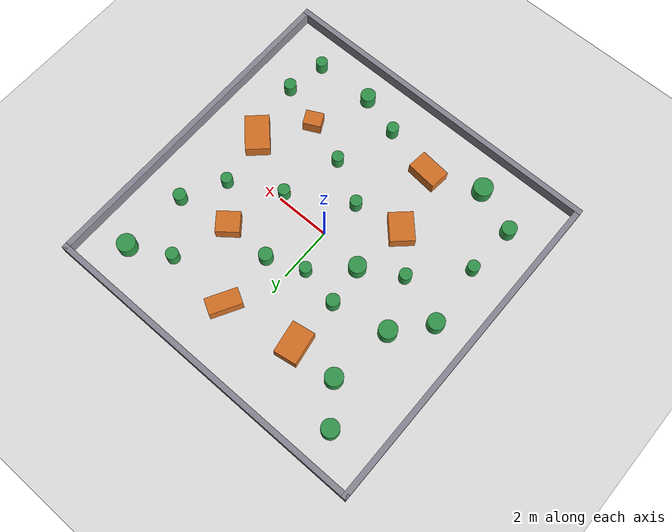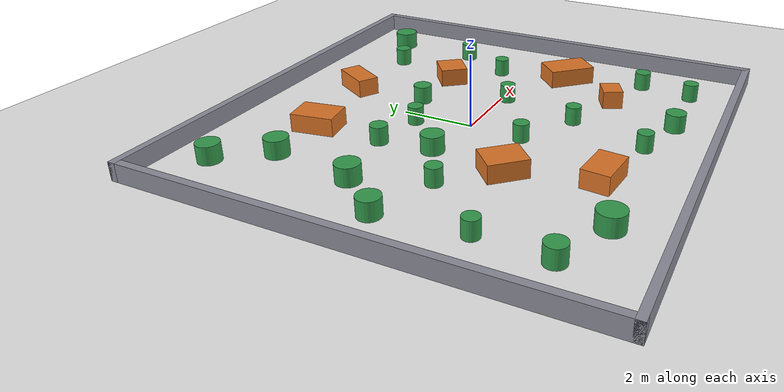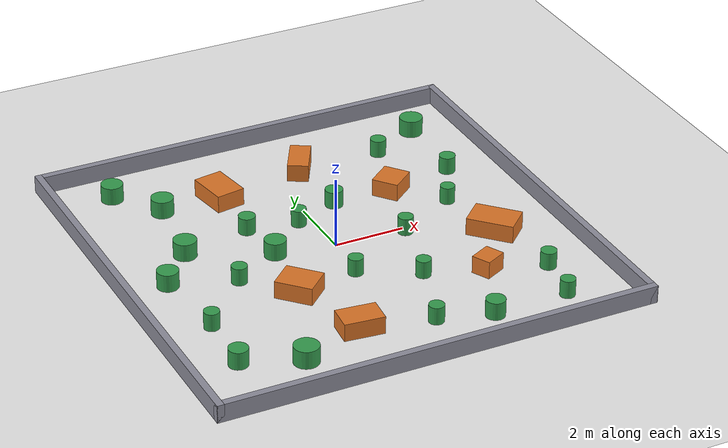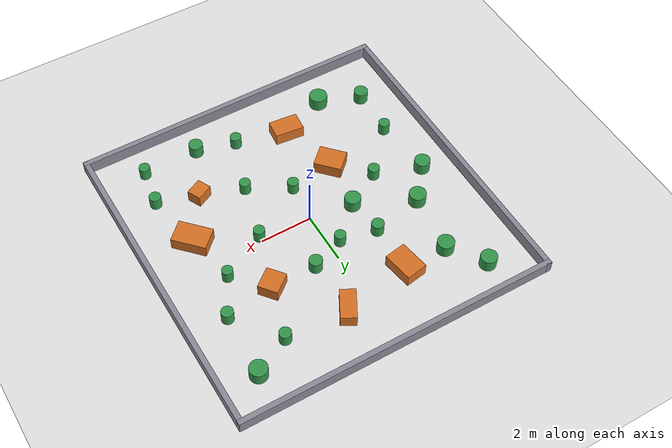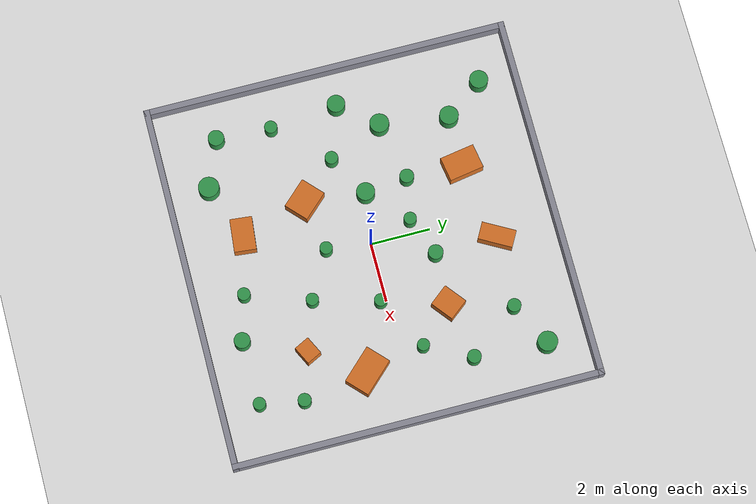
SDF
<?xml version="1.0" ?>
<!-- GENERATED by worlds/gen_worlds.py - do not edit by hand. -->
<sdf version="1.6">
  <world name="cluttered">
    <gravity>0 0 -9.8</gravity>
    <physics name="ode_500hz" type="ode">
      <max_step_size>0.002</max_step_size>
      <real_time_factor>1.0</real_time_factor>
      <real_time_update_rate>500</real_time_update_rate>
    </physics>

    <!-- ROS interface: exposes /get_entity_state and /set_entity_state (used by the episode runner) -->
    <plugin name="gazebo_ros_state" filename="libgazebo_ros_state.so">
      <ros><namespace>/</namespace></ros>
      <update_rate>10.0</update_rate>
    </plugin>

    <scene>
      <ambient>0.6 0.6 0.6 1</ambient>
      <background>0.85 0.9 0.95 1</background>
      <shadows>false</shadows>
    </scene>

    <light name="sun" type="directional">
      <cast_shadows>false</cast_shadows>
      <pose>0 0 10 0 0 0</pose>
      <diffuse>0.8 0.8 0.8 1</diffuse>
      <specular>0.2 0.2 0.2 1</specular>
      <direction>-0.3 0.2 -1.0</direction>
    </light>

    <model name="ground_plane">
      <static>true</static>
      <link name="link">
        <collision name="collision">
          <geometry><plane><normal>0 0 1</normal><size>40 40</size></plane></geometry>
          <surface><friction><ode><mu>100</mu><mu2>50</mu2></ode></friction></surface>
        </collision>
        <visual name="visual">
          <geometry><plane><normal>0 0 1</normal><size>40 40</size></plane></geometry>
          <material><ambient>0.9 0.9 0.9 1</ambient><diffuse>0.9 0.9 0.9 1</diffuse></material>
        </visual>
      </link>
    </model>

    <model name="wall_north">
      <static>true</static>
      <pose>0.0000 6.1000 0.2500 0 0 0.0000</pose>
      <link name="link">
        <collision name="collision"><geometry><box><size>12.4000 0.2000 0.5000</size></box></geometry></collision>
        <visual name="visual"><geometry><box><size>12.4000 0.2000 0.5000</size></box></geometry>
          <material><ambient>0.55 0.55 0.6 1</ambient><diffuse>0.55 0.55 0.6 1</diffuse></material></visual>
      </link>
    </model>
    <model name="wall_south">
      <static>true</static>
      <pose>0.0000 -6.1000 0.2500 0 0 0.0000</pose>
      <link name="link">
        <collision name="collision"><geometry><box><size>12.4000 0.2000 0.5000</size></box></geometry></collision>
        <visual name="visual"><geometry><box><size>12.4000 0.2000 0.5000</size></box></geometry>
          <material><ambient>0.55 0.55 0.6 1</ambient><diffuse>0.55 0.55 0.6 1</diffuse></material></visual>
      </link>
    </model>
    <model name="wall_east">
      <static>true</static>
      <pose>6.1000 0.0000 0.2500 0 0 0.0000</pose>
      <link name="link">
        <collision name="collision"><geometry><box><size>0.2000 12.4000 0.5000</size></box></geometry></collision>
        <visual name="visual"><geometry><box><size>0.2000 12.4000 0.5000</size></box></geometry>
          <material><ambient>0.55 0.55 0.6 1</ambient><diffuse>0.55 0.55 0.6 1</diffuse></material></visual>
      </link>
    </model>
    <model name="wall_west">
      <static>true</static>
      <pose>-6.1000 0.0000 0.2500 0 0 0.0000</pose>
      <link name="link">
        <collision name="collision"><geometry><box><size>0.2000 12.4000 0.5000</size></box></geometry></collision>
        <visual name="visual"><geometry><box><size>0.2000 12.4000 0.5000</size></box></geometry>
          <material><ambient>0.55 0.55 0.6 1</ambient><diffuse>0.55 0.55 0.6 1</diffuse></material></visual>
      </link>
    </model>
    <model name="cluttered_cyl_0">
      <static>true</static>
      <pose>-3.0680 -0.5521 0.2500 0 0 0</pose>
      <link name="link">
        <collision name="collision"><geometry><cylinder><radius>0.2195</radius><length>0.5000</length></cylinder></geometry></collision>
        <visual name="visual"><geometry><cylinder><radius>0.2195</radius><length>0.5000</length></cylinder></geometry>
          <material><ambient>0.2 0.6 0.3 1</ambient><diffuse>0.2 0.6 0.3 1</diffuse></material></visual>
      </link>
    </model>
    <model name="cluttered_cyl_1">
      <static>true</static>
      <pose>-4.6875 -4.0857 0.2500 0 0 0</pose>
      <link name="link">
        <collision name="collision"><geometry><cylinder><radius>0.2683</radius><length>0.5000</length></cylinder></geometry></collision>
        <visual name="visual"><geometry><cylinder><radius>0.2683</radius><length>0.5000</length></cylinder></geometry>
          <material><ambient>0.2 0.6 0.3 1</ambient><diffuse>0.2 0.6 0.3 1</diffuse></material></visual>
      </link>
    </model>
    <model name="cluttered_box_2">
      <static>true</static>
      <pose>-1.2777 -4.0091 0.2500 0 0 1.4716</pose>
      <link name="link">
        <collision name="collision"><geometry><box><size>0.7370 1.1177 0.5000</size></box></geometry></collision>
        <visual name="visual"><geometry><box><size>0.7370 1.1177 0.5000</size></box></geometry>
          <material><ambient>0.85 0.45 0.15 1</ambient><diffuse>0.85 0.45 0.15 1</diffuse></material></visual>
      </link>
    </model>
    <model name="cluttered_box_3">
      <static>true</static>
      <pose>4.1507 -1.2098 0.2500 0 0 0.7602</pose>
      <link name="link">
        <collision name="collision"><geometry><box><size>0.8713 1.3211 0.5000</size></box></geometry></collision>
        <visual name="visual"><geometry><box><size>0.8713 1.3211 0.5000</size></box></geometry>
          <material><ambient>0.85 0.45 0.15 1</ambient><diffuse>0.85 0.45 0.15 1</diffuse></material></visual>
      </link>
    </model>
    <model name="cluttered_box_4">
      <static>true</static>
      <pose>3.0170 -2.9074 0.2500 0 0 -1.1095</pose>
      <link name="link">
        <collision name="collision"><geometry><box><size>0.5456 0.6500 0.5000</size></box></geometry></collision>
        <visual name="visual"><geometry><box><size>0.5456 0.6500 0.5000</size></box></geometry>
          <material><ambient>0.85 0.45 0.15 1</ambient><diffuse>0.85 0.45 0.15 1</diffuse></material></visual>
      </link>
    </model>
    <model name="cluttered_cyl_5">
      <static>true</static>
      <pose>-4.5970 -2.2377 0.2500 0 0 0</pose>
      <link name="link">
        <collision name="collision"><geometry><cylinder><radius>0.2148</radius><length>0.5000</length></cylinder></geometry></collision>
        <visual name="visual"><geometry><cylinder><radius>0.2148</radius><length>0.5000</length></cylinder></geometry>
          <material><ambient>0.2 0.6 0.3 1</ambient><diffuse>0.2 0.6 0.3 1</diffuse></material></visual>
      </link>
    </model>
    <model name="cluttered_box_6">
      <static>true</static>
      <pose>-1.9112 -1.7639 0.2500 0 0 -0.8190</pose>
      <link name="link">
        <collision name="collision"><geometry><box><size>1.0565 0.8631 0.5000</size></box></geometry></collision>
        <visual name="visual"><geometry><box><size>1.0565 0.8631 0.5000</size></box></geometry>
          <material><ambient>0.85 0.45 0.15 1</ambient><diffuse>0.85 0.45 0.15 1</diffuse></material></visual>
      </link>
    </model>
    <model name="cluttered_box_7">
      <static>true</static>
      <pose>2.6299 1.9195 0.2500 0 0 -2.4685</pose>
      <link name="link">
        <collision name="collision"><geometry><box><size>0.8392 0.7618 0.5000</size></box></geometry></collision>
        <visual name="visual"><geometry><box><size>0.8392 0.7618 0.5000</size></box></geometry>
          <material><ambient>0.85 0.45 0.15 1</ambient><diffuse>0.85 0.45 0.15 1</diffuse></material></visual>
      </link>
    </model>
    <model name="cluttered_box_8">
      <static>true</static>
      <pose>0.8431 4.0516 0.2500 0 0 2.6310</pose>
      <link name="link">
        <collision name="collision"><geometry><box><size>0.5904 1.1637 0.5000</size></box></geometry></collision>
        <visual name="visual"><geometry><box><size>0.5904 1.1637 0.5000</size></box></geometry>
          <material><ambient>0.85 0.45 0.15 1</ambient><diffuse>0.85 0.45 0.15 1</diffuse></material></visual>
      </link>
    </model>
    <model name="cluttered_cyl_9">
      <static>true</static>
      <pose>-3.8184 1.2798 0.2500 0 0 0</pose>
      <link name="link">
        <collision name="collision"><geometry><cylinder><radius>0.3240</radius><length>0.5000</length></cylinder></geometry></collision>
        <visual name="visual"><geometry><cylinder><radius>0.3240</radius><length>0.5000</length></cylinder></geometry>
          <material><ambient>0.2 0.6 0.3 1</ambient><diffuse>0.2 0.6 0.3 1</diffuse></material></visual>
      </link>
    </model>
    <model name="cluttered_cyl_10">
      <static>true</static>
      <pose>2.1543 -4.8937 0.2500 0 0 0</pose>
      <link name="link">
        <collision name="collision"><geometry><cylinder><radius>0.2674</radius><length>0.5000</length></cylinder></geometry></collision>
        <visual name="visual"><geometry><cylinder><radius>0.2674</radius><length>0.5000</length></cylinder></geometry>
          <material><ambient>0.2 0.6 0.3 1</ambient><diffuse>0.2 0.6 0.3 1</diffuse></material></visual>
      </link>
    </model>
    <model name="cluttered_cyl_11">
      <static>true</static>
      <pose>-3.4970 3.5873 0.2500 0 0 0</pose>
      <link name="link">
        <collision name="collision"><geometry><cylinder><radius>0.3178</radius><length>0.5000</length></cylinder></geometry></collision>
        <visual name="visual"><geometry><cylinder><radius>0.3178</radius><length>0.5000</length></cylinder></geometry>
          <material><ambient>0.2 0.6 0.3 1</ambient><diffuse>0.2 0.6 0.3 1</diffuse></material></visual>
      </link>
    </model>
    <model name="cluttered_cyl_12">
      <static>true</static>
      <pose>1.9912 -0.1978 0.2500 0 0 0</pose>
      <link name="link">
        <collision name="collision"><geometry><cylinder><radius>0.2123</radius><length>0.5000</length></cylinder></geometry></collision>
        <visual name="visual"><geometry><cylinder><radius>0.2123</radius><length>0.5000</length></cylinder></geometry>
          <material><ambient>0.2 0.6 0.3 1</ambient><diffuse>0.2 0.6 0.3 1</diffuse></material></visual>
      </link>
    </model>
    <model name="cluttered_box_13">
      <static>true</static>
      <pose>-1.8114 3.5720 0.2500 0 0 0.1642</pose>
      <link name="link">
        <collision name="collision"><geometry><box><size>0.8313 1.1782 0.5000</size></box></geometry></collision>
        <visual name="visual"><geometry><box><size>0.8313 1.1782 0.5000</size></box></geometry>
          <material><ambient>0.85 0.45 0.15 1</ambient><diffuse>0.85 0.45 0.15 1</diffuse></material></visual>
      </link>
    </model>
    <model name="cluttered_cyl_14">
      <static>true</static>
      <pose>4.6863 4.6955 0.2500 0 0 0</pose>
      <link name="link">
        <collision name="collision"><geometry><cylinder><radius>0.3330</radius><length>0.5000</length></cylinder></geometry></collision>
        <visual name="visual"><geometry><cylinder><radius>0.3330</radius><length>0.5000</length></cylinder></geometry>
          <material><ambient>0.2 0.6 0.3 1</ambient><diffuse>0.2 0.6 0.3 1</diffuse></material></visual>
      </link>
    </model>
    <model name="cluttered_cyl_15">
      <static>true</static>
      <pose>-1.8336 1.6949 0.2500 0 0 0</pose>
      <link name="link">
        <collision name="collision"><geometry><cylinder><radius>0.2369</radius><length>0.5000</length></cylinder></geometry></collision>
        <visual name="visual"><geometry><cylinder><radius>0.2369</radius><length>0.5000</length></cylinder></geometry>
          <material><ambient>0.2 0.6 0.3 1</ambient><diffuse>0.2 0.6 0.3 1</diffuse></material></visual>
      </link>
    </model>
    <model name="cluttered_cyl_16">
      <static>true</static>
      <pose>-0.1449 -1.4874 0.2500 0 0 0</pose>
      <link name="link">
        <collision name="collision"><geometry><cylinder><radius>0.2122</radius><length>0.5000</length></cylinder></geometry></collision>
        <visual name="visual"><geometry><cylinder><radius>0.2122</radius><length>0.5000</length></cylinder></geometry>
          <material><ambient>0.2 0.6 0.3 1</ambient><diffuse>0.2 0.6 0.3 1</diffuse></material></visual>
      </link>
    </model>
    <model name="cluttered_cyl_17">
      <static>true</static>
      <pose>3.7763 0.7662 0.2500 0 0 0</pose>
      <link name="link">
        <collision name="collision"><geometry><cylinder><radius>0.2057</radius><length>0.5000</length></cylinder></geometry></collision>
        <visual name="visual"><geometry><cylinder><radius>0.2057</radius><length>0.5000</length></cylinder></geometry>
          <material><ambient>0.2 0.6 0.3 1</ambient><diffuse>0.2 0.6 0.3 1</diffuse></material></visual>
      </link>
    </model>
    <model name="cluttered_cyl_18">
      <static>true</static>
      <pose>-4.8313 0.0557 0.2500 0 0 0</pose>
      <link name="link">
        <collision name="collision"><geometry><cylinder><radius>0.2999</radius><length>0.5000</length></cylinder></geometry></collision>
        <visual name="visual"><geometry><cylinder><radius>0.2999</radius><length>0.5000</length></cylinder></geometry>
          <material><ambient>0.2 0.6 0.3 1</ambient><diffuse>0.2 0.6 0.3 1</diffuse></material></visual>
      </link>
    </model>
    <model name="cluttered_cyl_19">
      <static>true</static>
      <pose>0.6730 -4.4700 0.2500 0 0 0</pose>
      <link name="link">
        <collision name="collision"><geometry><cylinder><radius>0.2135</radius><length>0.5000</length></cylinder></geometry></collision>
        <visual name="visual"><geometry><cylinder><radius>0.2135</radius><length>0.5000</length></cylinder></geometry>
          <material><ambient>0.2 0.6 0.3 1</ambient><diffuse>0.2 0.6 0.3 1</diffuse></material></visual>
      </link>
    </model>
    <model name="cluttered_cyl_20">
      <static>true</static>
      <pose>-0.4142 1.4339 0.2500 0 0 0</pose>
      <link name="link">
        <collision name="collision"><geometry><cylinder><radius>0.2112</radius><length>0.5000</length></cylinder></geometry></collision>
        <visual name="visual"><geometry><cylinder><radius>0.2112</radius><length>0.5000</length></cylinder></geometry>
          <material><ambient>0.2 0.6 0.3 1</ambient><diffuse>0.2 0.6 0.3 1</diffuse></material></visual>
      </link>
    </model>
    <model name="cluttered_cyl_21">
      <static>true</static>
      <pose>-3.1145 -4.7183 0.2500 0 0 0</pose>
      <link name="link">
        <collision name="collision"><geometry><cylinder><radius>0.3481</radius><length>0.5000</length></cylinder></geometry></collision>
        <visual name="visual"><geometry><cylinder><radius>0.3481</radius><length>0.5000</length></cylinder></geometry>
          <material><ambient>0.2 0.6 0.3 1</ambient><diffuse>0.2 0.6 0.3 1</diffuse></material></visual>
      </link>
    </model>
    <model name="cluttered_cyl_22">
      <static>true</static>
      <pose>1.4069 -2.3510 0.2500 0 0 0</pose>
      <link name="link">
        <collision name="collision"><geometry><cylinder><radius>0.2093</radius><length>0.5000</length></cylinder></geometry></collision>
        <visual name="visual"><geometry><cylinder><radius>0.2093</radius><length>0.5000</length></cylinder></geometry>
          <material><ambient>0.2 0.6 0.3 1</ambient><diffuse>0.2 0.6 0.3 1</diffuse></material></visual>
      </link>
    </model>
    <model name="cluttered_cyl_23">
      <static>true</static>
      <pose>4.3074 -4.8529 0.2500 0 0 0</pose>
      <link name="link">
        <collision name="collision"><geometry><cylinder><radius>0.2086</radius><length>0.5000</length></cylinder></geometry></collision>
        <visual name="visual"><geometry><cylinder><radius>0.2086</radius><length>0.5000</length></cylinder></geometry>
          <material><ambient>0.2 0.6 0.3 1</ambient><diffuse>0.2 0.6 0.3 1</diffuse></material></visual>
      </link>
    </model>
    <model name="cluttered_cyl_24">
      <static>true</static>
      <pose>4.5664 2.2649 0.2500 0 0 0</pose>
      <link name="link">
        <collision name="collision"><geometry><cylinder><radius>0.2289</radius><length>0.5000</length></cylinder></geometry></collision>
        <visual name="visual"><geometry><cylinder><radius>0.2289</radius><length>0.5000</length></cylinder></geometry>
          <material><ambient>0.2 0.6 0.3 1</ambient><diffuse>0.2 0.6 0.3 1</diffuse></material></visual>
      </link>
    </model>
    <model name="cluttered_cyl_25">
      <static>true</static>
      <pose>0.8966 1.9503 0.2500 0 0 0</pose>
      <link name="link">
        <collision name="collision"><geometry><cylinder><radius>0.2493</radius><length>0.5000</length></cylinder></geometry></collision>
        <visual name="visual"><geometry><cylinder><radius>0.2493</radius><length>0.5000</length></cylinder></geometry>
          <material><ambient>0.2 0.6 0.3 1</ambient><diffuse>0.2 0.6 0.3 1</diffuse></material></visual>
      </link>
    </model>
    <model name="cluttered_cyl_26">
      <static>true</static>
      <pose>3.2651 3.9666 0.2500 0 0 0</pose>
      <link name="link">
        <collision name="collision"><geometry><cylinder><radius>0.2244</radius><length>0.5000</length></cylinder></geometry></collision>
        <visual name="visual"><geometry><cylinder><radius>0.2244</radius><length>0.5000</length></cylinder></geometry>
          <material><ambient>0.2 0.6 0.3 1</ambient><diffuse>0.2 0.6 0.3 1</diffuse></material></visual>
      </link>
    </model>
    <model name="cluttered_cyl_27">
      <static>true</static>
      <pose>-1.6635 0.2463 0.2500 0 0 0</pose>
      <link name="link">
        <collision name="collision"><geometry><cylinder><radius>0.3060</radius><length>0.5000</length></cylinder></geometry></collision>
        <visual name="visual"><geometry><cylinder><radius>0.3060</radius><length>0.5000</length></cylinder></geometry>
          <material><ambient>0.2 0.6 0.3 1</ambient><diffuse>0.2 0.6 0.3 1</diffuse></material></visual>
      </link>
    </model>
    <model name="cluttered_cyl_28">
      <static>true</static>
      <pose>4.5627 -3.4137 0.2500 0 0 0</pose>
      <link name="link">
        <collision name="collision"><geometry><cylinder><radius>0.2210</radius><length>0.5000</length></cylinder></geometry></collision>
        <visual name="visual"><geometry><cylinder><radius>0.2210</radius><length>0.5000</length></cylinder></geometry>
          <material><ambient>0.2 0.6 0.3 1</ambient><diffuse>0.2 0.6 0.3 1</diffuse></material></visual>
      </link>
    </model>
    <model name="cluttered_cyl_29">
      <static>true</static>
      <pose>-4.4483 4.8711 0.2500 0 0 0</pose>
      <link name="link">
        <collision name="collision"><geometry><cylinder><radius>0.3101</radius><length>0.5000</length></cylinder></geometry></collision>
        <visual name="visual"><geometry><cylinder><radius>0.3101</radius><length>0.5000</length></cylinder></geometry>
          <material><ambient>0.2 0.6 0.3 1</ambient><diffuse>0.2 0.6 0.3 1</diffuse></material></visual>
      </link>
    </model>

    <!-- top-down camera for rendered (GUI) runs; ignored by gzserver -->
    <gui fullscreen="0">
      <camera name="user_camera">
        <pose>0 0 13 0 1.5708 0</pose>
        <view_controller>orbit</view_controller>
        <projection_type>perspective</projection_type>
      </camera>
    </gui>
  </world>
</sdf>
